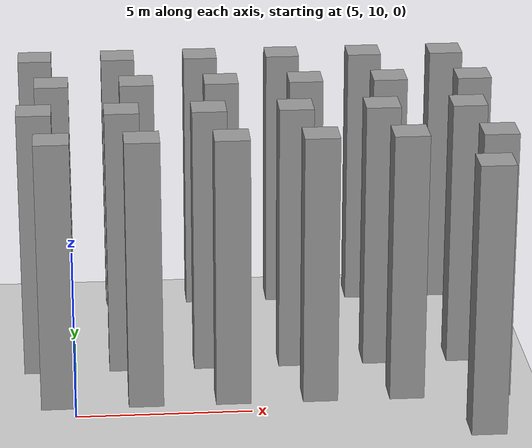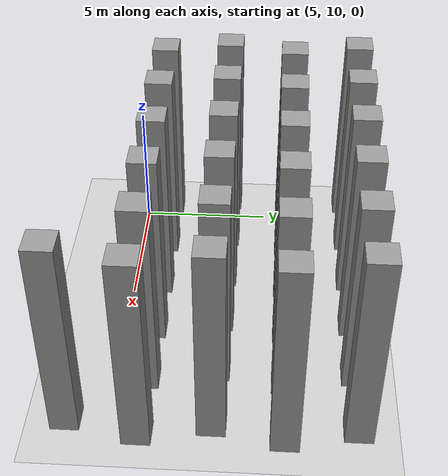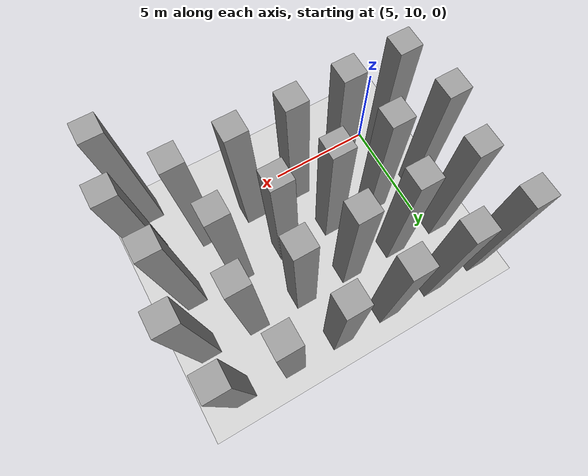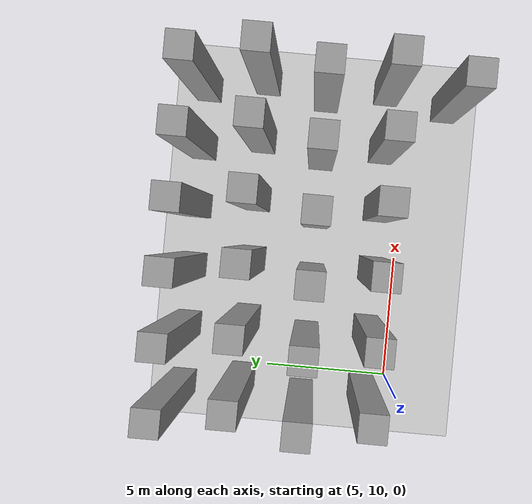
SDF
<sdf version="1.7">
 <world name="default">
  <model name="ground_plane">
   <static>1</static>
   <link name="link">
    <collision name="collision">
     <geometry><plane><normal>0 0 1</normal><size>100 100</size></plane></geometry>
     <surface>
      <contact><collide_bitmask>65535</collide_bitmask></contact>
      <friction><ode><mu>100</mu><mu2>50</mu2></ode></friction>
     </surface>
    </collision>
    <visual name="visual">
     <cast_shadows>0</cast_shadows>
     <geometry><plane><normal>0 0 1</normal><size>100 100</size></plane></geometry>
     <material>
      <script><uri>file://media/materials/scripts/gazebo.material</uri><name>Gazebo/Grey</name></script>
     </material>
    </visual>
   </link>
  </model>
  <model name="unit_box_static174">
   <link name="link">
    <inertial>
     <mass>1</mass>
     <inertia>
      <ixx>0.166667</ixx>
      <ixy>0</ixy>
      <ixz>0</ixz>
      <iyy>0.166667</iyy>
      <iyz>0</iyz>
      <izz>0.166667</izz>
     </inertia>
    </inertial>
    <visual name="visual">
     <geometry><box><size>1 1 8</size></box></geometry>
     <material>
      <script><name>Gazebo/Grey</name><uri>file://media/materials/scripts/gazebo.material</uri></script>
      <shader type="pixel"/>
     </material>
    </visual>
    <collision name="collision">
     <geometry><box><size>1 1 8</size></box></geometry>
     <surface>
      <friction>
       <ode><mu>1</mu><mu2>1</mu2><fdir1>0 0 0</fdir1><slip1>0</slip1><slip2>0</slip2></ode>
       <torsional>
        <coefficient>1</coefficient>
        <patch_radius>0</patch_radius>
        <surface_radius>0</surface_radius>
        <use_patch_radius>1</use_patch_radius>
        <ode><slip>0</slip></ode>
       </torsional>
      </friction>
      <bounce><restitution_coefficient>0</restitution_coefficient><threshold>1e+06</threshold></bounce>
      <contact>
       <collide_without_contact>0</collide_without_contact>
       <collide_without_contact_bitmask>1</collide_without_contact_bitmask>
       <collide_bitmask>1</collide_bitmask>
       <ode>
        <soft_cfm>0</soft_cfm>
        <soft_erp>0.2</soft_erp>
        <kp>1e+13</kp>
        <kd>1</kd>
        <max_vel>0.01</max_vel>
        <min_depth>0</min_depth>
       </ode>
       <bullet>
        <split_impulse>1</split_impulse>
        <split_impulse_penetration_threshold>-0.01</split_impulse_penetration_threshold>
        <soft_cfm>0</soft_cfm>
        <soft_erp>0.2</soft_erp>
        <kp>1e+13</kp>
        <kd>1</kd>
       </bullet>
      </contact>
     </surface>
    </collision>
   </link>
   <static>1</static>
   <pose>16.5 8.5 4 0 -0 0</pose>
  </model>
  <model name="unit_box_static184">
   <link name="link">
    <inertial>
     <mass>1</mass>
     <inertia>
      <ixx>0.166667</ixx>
      <ixy>0</ixy>
      <ixz>0</ixz>
      <iyy>0.166667</iyy>
      <iyz>0</iyz>
      <izz>0.166667</izz>
     </inertia>
    </inertial>
    <visual name="visual">
     <geometry><box><size>1 1 8</size></box></geometry>
     <material>
      <script><name>Gazebo/Grey</name><uri>file://media/materials/scripts/gazebo.material</uri></script>
      <shader type="pixel"/>
     </material>
    </visual>
    <collision name="collision">
     <geometry><box><size>1 1 8</size></box></geometry>
     <surface>
      <friction>
       <ode><mu>1</mu><mu2>1</mu2><fdir1>0 0 0</fdir1><slip1>0</slip1><slip2>0</slip2></ode>
       <torsional>
        <coefficient>1</coefficient>
        <patch_radius>0</patch_radius>
        <surface_radius>0</surface_radius>
        <use_patch_radius>1</use_patch_radius>
        <ode><slip>0</slip></ode>
       </torsional>
      </friction>
      <bounce><restitution_coefficient>0</restitution_coefficient><threshold>1e+06</threshold></bounce>
      <contact>
       <collide_without_contact>0</collide_without_contact>
       <collide_without_contact_bitmask>1</collide_without_contact_bitmask>
       <collide_bitmask>1</collide_bitmask>
       <ode>
        <soft_cfm>0</soft_cfm>
        <soft_erp>0.2</soft_erp>
        <kp>1e+13</kp>
        <kd>1</kd>
        <max_vel>0.01</max_vel>
        <min_depth>0</min_depth>
       </ode>
       <bullet>
        <split_impulse>1</split_impulse>
        <split_impulse_penetration_threshold>-0.01</split_impulse_penetration_threshold>
        <soft_cfm>0</soft_cfm>
        <soft_erp>0.2</soft_erp>
        <kp>1e+13</kp>
        <kd>1</kd>
       </bullet>
      </contact>
     </surface>
    </collision>
   </link>
   <static>1</static>
   <pose>4.5 11 4 0 -0 0</pose>
  </model>
  <model name="unit_box_static185">
   <link name="link">
    <inertial>
     <mass>1</mass>
     <inertia>
      <ixx>0.166667</ixx>
      <ixy>0</ixy>
      <ixz>0</ixz>
      <iyy>0.166667</iyy>
      <iyz>0</iyz>
      <izz>0.166667</izz>
     </inertia>
    </inertial>
    <visual name="visual">
     <geometry><box><size>1 1 8</size></box></geometry>
     <material>
      <script><name>Gazebo/Grey</name><uri>file://media/materials/scripts/gazebo.material</uri></script>
      <shader type="pixel"/>
     </material>
    </visual>
    <collision name="collision">
     <geometry><box><size>1 1 8</size></box></geometry>
     <surface>
      <friction>
       <ode><mu>1</mu><mu2>1</mu2><fdir1>0 0 0</fdir1><slip1>0</slip1><slip2>0</slip2></ode>
       <torsional>
        <coefficient>1</coefficient>
        <patch_radius>0</patch_radius>
        <surface_radius>0</surface_radius>
        <use_patch_radius>1</use_patch_radius>
        <ode><slip>0</slip></ode>
       </torsional>
      </friction>
      <bounce><restitution_coefficient>0</restitution_coefficient><threshold>1e+06</threshold></bounce>
      <contact>
       <collide_without_contact>0</collide_without_contact>
       <collide_without_contact_bitmask>1</collide_without_contact_bitmask>
       <collide_bitmask>1</collide_bitmask>
       <ode>
        <soft_cfm>0</soft_cfm>
        <soft_erp>0.2</soft_erp>
        <kp>1e+13</kp>
        <kd>1</kd>
        <max_vel>0.01</max_vel>
        <min_depth>0</min_depth>
       </ode>
       <bullet>
        <split_impulse>1</split_impulse>
        <split_impulse_penetration_threshold>-0.01</split_impulse_penetration_threshold>
        <soft_cfm>0</soft_cfm>
        <soft_erp>0.2</soft_erp>
        <kp>1e+13</kp>
        <kd>1</kd>
       </bullet>
      </contact>
     </surface>
    </collision>
   </link>
   <static>1</static>
   <pose>7 11 4 0 -0 0</pose>
  </model>
  <model name="unit_box_static186">
   <link name="link">
    <inertial>
     <mass>1</mass>
     <inertia>
      <ixx>0.166667</ixx>
      <ixy>0</ixy>
      <ixz>0</ixz>
      <iyy>0.166667</iyy>
      <iyz>0</iyz>
      <izz>0.166667</izz>
     </inertia>
    </inertial>
    <visual name="visual">
     <geometry><box><size>1 1 8</size></box></geometry>
     <material>
      <script><name>Gazebo/Grey</name><uri>file://media/materials/scripts/gazebo.material</uri></script>
      <shader type="pixel"/>
     </material>
    </visual>
    <collision name="collision">
     <geometry><box><size>1 1 8</size></box></geometry>
     <surface>
      <friction>
       <ode><mu>1</mu><mu2>1</mu2><fdir1>0 0 0</fdir1><slip1>0</slip1><slip2>0</slip2></ode>
       <torsional>
        <coefficient>1</coefficient>
        <patch_radius>0</patch_radius>
        <surface_radius>0</surface_radius>
        <use_patch_radius>1</use_patch_radius>
        <ode><slip>0</slip></ode>
       </torsional>
      </friction>
      <bounce><restitution_coefficient>0</restitution_coefficient><threshold>1e+06</threshold></bounce>
      <contact>
       <collide_without_contact>0</collide_without_contact>
       <collide_without_contact_bitmask>1</collide_without_contact_bitmask>
       <collide_bitmask>1</collide_bitmask>
       <ode>
        <soft_cfm>0</soft_cfm>
        <soft_erp>0.2</soft_erp>
        <kp>1e+13</kp>
        <kd>1</kd>
        <max_vel>0.01</max_vel>
        <min_depth>0</min_depth>
       </ode>
       <bullet>
        <split_impulse>1</split_impulse>
        <split_impulse_penetration_threshold>-0.01</split_impulse_penetration_threshold>
        <soft_cfm>0</soft_cfm>
        <soft_erp>0.2</soft_erp>
        <kp>1e+13</kp>
        <kd>1</kd>
       </bullet>
      </contact>
     </surface>
    </collision>
   </link>
   <static>1</static>
   <pose>9.5 11 4 0 -0 0</pose>
  </model>
  <model name="unit_box_static187">
   <link name="link">
    <inertial>
     <mass>1</mass>
     <inertia>
      <ixx>0.166667</ixx>
      <ixy>0</ixy>
      <ixz>0</ixz>
      <iyy>0.166667</iyy>
      <iyz>0</iyz>
      <izz>0.166667</izz>
     </inertia>
    </inertial>
    <visual name="visual">
     <geometry><box><size>1 1 8</size></box></geometry>
     <material>
      <script><name>Gazebo/Grey</name><uri>file://media/materials/scripts/gazebo.material</uri></script>
      <shader type="pixel"/>
     </material>
    </visual>
    <collision name="collision">
     <geometry><box><size>1 1 8</size></box></geometry>
     <surface>
      <friction>
       <ode><mu>1</mu><mu2>1</mu2><fdir1>0 0 0</fdir1><slip1>0</slip1><slip2>0</slip2></ode>
       <torsional>
        <coefficient>1</coefficient>
        <patch_radius>0</patch_radius>
        <surface_radius>0</surface_radius>
        <use_patch_radius>1</use_patch_radius>
        <ode><slip>0</slip></ode>
       </torsional>
      </friction>
      <bounce><restitution_coefficient>0</restitution_coefficient><threshold>1e+06</threshold></bounce>
      <contact>
       <collide_without_contact>0</collide_without_contact>
       <collide_without_contact_bitmask>1</collide_without_contact_bitmask>
       <collide_bitmask>1</collide_bitmask>
       <ode>
        <soft_cfm>0</soft_cfm>
        <soft_erp>0.2</soft_erp>
        <kp>1e+13</kp>
        <kd>1</kd>
        <max_vel>0.01</max_vel>
        <min_depth>0</min_depth>
       </ode>
       <bullet>
        <split_impulse>1</split_impulse>
        <split_impulse_penetration_threshold>-0.01</split_impulse_penetration_threshold>
        <soft_cfm>0</soft_cfm>
        <soft_erp>0.2</soft_erp>
        <kp>1e+13</kp>
        <kd>1</kd>
       </bullet>
      </contact>
     </surface>
    </collision>
   </link>
   <static>1</static>
   <pose>12 11 4 0 -0 0</pose>
  </model>
  <model name="unit_box_static188">
   <link name="link">
    <inertial>
     <mass>1</mass>
     <inertia>
      <ixx>0.166667</ixx>
      <ixy>0</ixy>
      <ixz>0</ixz>
      <iyy>0.166667</iyy>
      <iyz>0</iyz>
      <izz>0.166667</izz>
     </inertia>
    </inertial>
    <visual name="visual">
     <geometry><box><size>1 1 8</size></box></geometry>
     <material>
      <script><name>Gazebo/Grey</name><uri>file://media/materials/scripts/gazebo.material</uri></script>
      <shader type="pixel"/>
     </material>
    </visual>
    <collision name="collision">
     <geometry><box><size>1 1 8</size></box></geometry>
     <surface>
      <friction>
       <ode><mu>1</mu><mu2>1</mu2><fdir1>0 0 0</fdir1><slip1>0</slip1><slip2>0</slip2></ode>
       <torsional>
        <coefficient>1</coefficient>
        <patch_radius>0</patch_radius>
        <surface_radius>0</surface_radius>
        <use_patch_radius>1</use_patch_radius>
        <ode><slip>0</slip></ode>
       </torsional>
      </friction>
      <bounce><restitution_coefficient>0</restitution_coefficient><threshold>1e+06</threshold></bounce>
      <contact>
       <collide_without_contact>0</collide_without_contact>
       <collide_without_contact_bitmask>1</collide_without_contact_bitmask>
       <collide_bitmask>1</collide_bitmask>
       <ode>
        <soft_cfm>0</soft_cfm>
        <soft_erp>0.2</soft_erp>
        <kp>1e+13</kp>
        <kd>1</kd>
        <max_vel>0.01</max_vel>
        <min_depth>0</min_depth>
       </ode>
       <bullet>
        <split_impulse>1</split_impulse>
        <split_impulse_penetration_threshold>-0.01</split_impulse_penetration_threshold>
        <soft_cfm>0</soft_cfm>
        <soft_erp>0.2</soft_erp>
        <kp>1e+13</kp>
        <kd>1</kd>
       </bullet>
      </contact>
     </surface>
    </collision>
   </link>
   <static>1</static>
   <pose>14.5 11 4 0 -0 0</pose>
  </model>
  <model name="unit_box_static189">
   <link name="link">
    <inertial>
     <mass>1</mass>
     <inertia>
      <ixx>0.166667</ixx>
      <ixy>0</ixy>
      <ixz>0</ixz>
      <iyy>0.166667</iyy>
      <iyz>0</iyz>
      <izz>0.166667</izz>
     </inertia>
    </inertial>
    <visual name="visual">
     <geometry><box><size>1 1 8</size></box></geometry>
     <material>
      <script><name>Gazebo/Grey</name><uri>file://media/materials/scripts/gazebo.material</uri></script>
      <shader type="pixel"/>
     </material>
    </visual>
    <collision name="collision">
     <geometry><box><size>1 1 8</size></box></geometry>
     <surface>
      <friction>
       <ode><mu>1</mu><mu2>1</mu2><fdir1>0 0 0</fdir1><slip1>0</slip1><slip2>0</slip2></ode>
       <torsional>
        <coefficient>1</coefficient>
        <patch_radius>0</patch_radius>
        <surface_radius>0</surface_radius>
        <use_patch_radius>1</use_patch_radius>
        <ode><slip>0</slip></ode>
       </torsional>
      </friction>
      <bounce><restitution_coefficient>0</restitution_coefficient><threshold>1e+06</threshold></bounce>
      <contact>
       <collide_without_contact>0</collide_without_contact>
       <collide_without_contact_bitmask>1</collide_without_contact_bitmask>
       <collide_bitmask>1</collide_bitmask>
       <ode>
        <soft_cfm>0</soft_cfm>
        <soft_erp>0.2</soft_erp>
        <kp>1e+13</kp>
        <kd>1</kd>
        <max_vel>0.01</max_vel>
        <min_depth>0</min_depth>
       </ode>
       <bullet>
        <split_impulse>1</split_impulse>
        <split_impulse_penetration_threshold>-0.01</split_impulse_penetration_threshold>
        <soft_cfm>0</soft_cfm>
        <soft_erp>0.2</soft_erp>
        <kp>1e+13</kp>
        <kd>1</kd>
       </bullet>
      </contact>
     </surface>
    </collision>
   </link>
   <static>1</static>
   <pose>17 11 4 0 -0 0</pose>
  </model>
  <model name="unit_box_static198">
   <link name="link">
    <inertial>
     <mass>1</mass>
     <inertia>
      <ixx>0.166667</ixx>
      <ixy>0</ixy>
      <ixz>0</ixz>
      <iyy>0.166667</iyy>
      <iyz>0</iyz>
      <izz>0.166667</izz>
     </inertia>
    </inertial>
    <visual name="visual">
     <geometry><box><size>1 1 8</size></box></geometry>
     <material>
      <script><name>Gazebo/Grey</name><uri>file://media/materials/scripts/gazebo.material</uri></script>
      <shader type="pixel"/>
     </material>
    </visual>
    <collision name="collision">
     <geometry><box><size>1 1 8</size></box></geometry>
     <surface>
      <friction>
       <ode><mu>1</mu><mu2>1</mu2><fdir1>0 0 0</fdir1><slip1>0</slip1><slip2>0</slip2></ode>
       <torsional>
        <coefficient>1</coefficient>
        <patch_radius>0</patch_radius>
        <surface_radius>0</surface_radius>
        <use_patch_radius>1</use_patch_radius>
        <ode><slip>0</slip></ode>
       </torsional>
      </friction>
      <bounce><restitution_coefficient>0</restitution_coefficient><threshold>1e+06</threshold></bounce>
      <contact>
       <collide_without_contact>0</collide_without_contact>
       <collide_without_contact_bitmask>1</collide_without_contact_bitmask>
       <collide_bitmask>1</collide_bitmask>
       <ode>
        <soft_cfm>0</soft_cfm>
        <soft_erp>0.2</soft_erp>
        <kp>1e+13</kp>
        <kd>1</kd>
        <max_vel>0.01</max_vel>
        <min_depth>0</min_depth>
       </ode>
       <bullet>
        <split_impulse>1</split_impulse>
        <split_impulse_penetration_threshold>-0.01</split_impulse_penetration_threshold>
        <soft_cfm>0</soft_cfm>
        <soft_erp>0.2</soft_erp>
        <kp>1e+13</kp>
        <kd>1</kd>
       </bullet>
      </contact>
     </surface>
    </collision>
   </link>
   <static>1</static>
   <pose>4 13.5 4 0 -0 0</pose>
  </model>
  <model name="unit_box_static199">
   <link name="link">
    <inertial>
     <mass>1</mass>
     <inertia>
      <ixx>0.166667</ixx>
      <ixy>0</ixy>
      <ixz>0</ixz>
      <iyy>0.166667</iyy>
      <iyz>0</iyz>
      <izz>0.166667</izz>
     </inertia>
    </inertial>
    <visual name="visual">
     <geometry><box><size>1 1 8</size></box></geometry>
     <material>
      <script><name>Gazebo/Grey</name><uri>file://media/materials/scripts/gazebo.material</uri></script>
      <shader type="pixel"/>
     </material>
    </visual>
    <collision name="collision">
     <geometry><box><size>1 1 8</size></box></geometry>
     <surface>
      <friction>
       <ode><mu>1</mu><mu2>1</mu2><fdir1>0 0 0</fdir1><slip1>0</slip1><slip2>0</slip2></ode>
       <torsional>
        <coefficient>1</coefficient>
        <patch_radius>0</patch_radius>
        <surface_radius>0</surface_radius>
        <use_patch_radius>1</use_patch_radius>
        <ode><slip>0</slip></ode>
       </torsional>
      </friction>
      <bounce><restitution_coefficient>0</restitution_coefficient><threshold>1e+06</threshold></bounce>
      <contact>
       <collide_without_contact>0</collide_without_contact>
       <collide_without_contact_bitmask>1</collide_without_contact_bitmask>
       <collide_bitmask>1</collide_bitmask>
       <ode>
        <soft_cfm>0</soft_cfm>
        <soft_erp>0.2</soft_erp>
        <kp>1e+13</kp>
        <kd>1</kd>
        <max_vel>0.01</max_vel>
        <min_depth>0</min_depth>
       </ode>
       <bullet>
        <split_impulse>1</split_impulse>
        <split_impulse_penetration_threshold>-0.01</split_impulse_penetration_threshold>
        <soft_cfm>0</soft_cfm>
        <soft_erp>0.2</soft_erp>
        <kp>1e+13</kp>
        <kd>1</kd>
       </bullet>
      </contact>
     </surface>
    </collision>
   </link>
   <static>1</static>
   <pose>6.5 13.5 4 0 -0 0</pose>
  </model>
  <model name="unit_box_static200">
   <link name="link">
    <inertial>
     <mass>1</mass>
     <inertia>
      <ixx>0.166667</ixx>
      <ixy>0</ixy>
      <ixz>0</ixz>
      <iyy>0.166667</iyy>
      <iyz>0</iyz>
      <izz>0.166667</izz>
     </inertia>
    </inertial>
    <visual name="visual">
     <geometry><box><size>1 1 8</size></box></geometry>
     <material>
      <script><name>Gazebo/Grey</name><uri>file://media/materials/scripts/gazebo.material</uri></script>
      <shader type="pixel"/>
     </material>
    </visual>
    <collision name="collision">
     <geometry><box><size>1 1 8</size></box></geometry>
     <surface>
      <friction>
       <ode><mu>1</mu><mu2>1</mu2><fdir1>0 0 0</fdir1><slip1>0</slip1><slip2>0</slip2></ode>
       <torsional>
        <coefficient>1</coefficient>
        <patch_radius>0</patch_radius>
        <surface_radius>0</surface_radius>
        <use_patch_radius>1</use_patch_radius>
        <ode><slip>0</slip></ode>
       </torsional>
      </friction>
      <bounce><restitution_coefficient>0</restitution_coefficient><threshold>1e+06</threshold></bounce>
      <contact>
       <collide_without_contact>0</collide_without_contact>
       <collide_without_contact_bitmask>1</collide_without_contact_bitmask>
       <collide_bitmask>1</collide_bitmask>
       <ode>
        <soft_cfm>0</soft_cfm>
        <soft_erp>0.2</soft_erp>
        <kp>1e+13</kp>
        <kd>1</kd>
        <max_vel>0.01</max_vel>
        <min_depth>0</min_depth>
       </ode>
       <bullet>
        <split_impulse>1</split_impulse>
        <split_impulse_penetration_threshold>-0.01</split_impulse_penetration_threshold>
        <soft_cfm>0</soft_cfm>
        <soft_erp>0.2</soft_erp>
        <kp>1e+13</kp>
        <kd>1</kd>
       </bullet>
      </contact>
     </surface>
    </collision>
   </link>
   <static>1</static>
   <pose>9 13.5 4 0 -0 0</pose>
  </model>
  <model name="unit_box_static201">
   <link name="link">
    <inertial>
     <mass>1</mass>
     <inertia>
      <ixx>0.166667</ixx>
      <ixy>0</ixy>
      <ixz>0</ixz>
      <iyy>0.166667</iyy>
      <iyz>0</iyz>
      <izz>0.166667</izz>
     </inertia>
    </inertial>
    <visual name="visual">
     <geometry><box><size>1 1 8</size></box></geometry>
     <material>
      <script><name>Gazebo/Grey</name><uri>file://media/materials/scripts/gazebo.material</uri></script>
      <shader type="pixel"/>
     </material>
    </visual>
    <collision name="collision">
     <geometry><box><size>1 1 8</size></box></geometry>
     <surface>
      <friction>
       <ode><mu>1</mu><mu2>1</mu2><fdir1>0 0 0</fdir1><slip1>0</slip1><slip2>0</slip2></ode>
       <torsional>
        <coefficient>1</coefficient>
        <patch_radius>0</patch_radius>
        <surface_radius>0</surface_radius>
        <use_patch_radius>1</use_patch_radius>
        <ode><slip>0</slip></ode>
       </torsional>
      </friction>
      <bounce><restitution_coefficient>0</restitution_coefficient><threshold>1e+06</threshold></bounce>
      <contact>
       <collide_without_contact>0</collide_without_contact>
       <collide_without_contact_bitmask>1</collide_without_contact_bitmask>
       <collide_bitmask>1</collide_bitmask>
       <ode>
        <soft_cfm>0</soft_cfm>
        <soft_erp>0.2</soft_erp>
        <kp>1e+13</kp>
        <kd>1</kd>
        <max_vel>0.01</max_vel>
        <min_depth>0</min_depth>
       </ode>
       <bullet>
        <split_impulse>1</split_impulse>
        <split_impulse_penetration_threshold>-0.01</split_impulse_penetration_threshold>
        <soft_cfm>0</soft_cfm>
        <soft_erp>0.2</soft_erp>
        <kp>1e+13</kp>
        <kd>1</kd>
       </bullet>
      </contact>
     </surface>
    </collision>
   </link>
   <static>1</static>
   <pose>11.5 13.5 4 0 -0 0</pose>
  </model>
  <model name="unit_box_static202">
   <link name="link">
    <inertial>
     <mass>1</mass>
     <inertia>
      <ixx>0.166667</ixx>
      <ixy>0</ixy>
      <ixz>0</ixz>
      <iyy>0.166667</iyy>
      <iyz>0</iyz>
      <izz>0.166667</izz>
     </inertia>
    </inertial>
    <visual name="visual">
     <geometry><box><size>1 1 8</size></box></geometry>
     <material>
      <script><name>Gazebo/Grey</name><uri>file://media/materials/scripts/gazebo.material</uri></script>
      <shader type="pixel"/>
     </material>
    </visual>
    <collision name="collision">
     <geometry><box><size>1 1 8</size></box></geometry>
     <surface>
      <friction>
       <ode><mu>1</mu><mu2>1</mu2><fdir1>0 0 0</fdir1><slip1>0</slip1><slip2>0</slip2></ode>
       <torsional>
        <coefficient>1</coefficient>
        <patch_radius>0</patch_radius>
        <surface_radius>0</surface_radius>
        <use_patch_radius>1</use_patch_radius>
        <ode><slip>0</slip></ode>
       </torsional>
      </friction>
      <bounce><restitution_coefficient>0</restitution_coefficient><threshold>1e+06</threshold></bounce>
      <contact>
       <collide_without_contact>0</collide_without_contact>
       <collide_without_contact_bitmask>1</collide_without_contact_bitmask>
       <collide_bitmask>1</collide_bitmask>
       <ode>
        <soft_cfm>0</soft_cfm>
        <soft_erp>0.2</soft_erp>
        <kp>1e+13</kp>
        <kd>1</kd>
        <max_vel>0.01</max_vel>
        <min_depth>0</min_depth>
       </ode>
       <bullet>
        <split_impulse>1</split_impulse>
        <split_impulse_penetration_threshold>-0.01</split_impulse_penetration_threshold>
        <soft_cfm>0</soft_cfm>
        <soft_erp>0.2</soft_erp>
        <kp>1e+13</kp>
        <kd>1</kd>
       </bullet>
      </contact>
     </surface>
    </collision>
   </link>
   <static>1</static>
   <pose>14 13.5 4 0 -0 0</pose>
  </model>
  <model name="unit_box_static203">
   <link name="link">
    <inertial>
     <mass>1</mass>
     <inertia>
      <ixx>0.166667</ixx>
      <ixy>0</ixy>
      <ixz>0</ixz>
      <iyy>0.166667</iyy>
      <iyz>0</iyz>
      <izz>0.166667</izz>
     </inertia>
    </inertial>
    <visual name="visual">
     <geometry><box><size>1 1 8</size></box></geometry>
     <material>
      <script><name>Gazebo/Grey</name><uri>file://media/materials/scripts/gazebo.material</uri></script>
      <shader type="pixel"/>
     </material>
    </visual>
    <collision name="collision">
     <geometry><box><size>1 1 8</size></box></geometry>
     <surface>
      <friction>
       <ode><mu>1</mu><mu2>1</mu2><fdir1>0 0 0</fdir1><slip1>0</slip1><slip2>0</slip2></ode>
       <torsional>
        <coefficient>1</coefficient>
        <patch_radius>0</patch_radius>
        <surface_radius>0</surface_radius>
        <use_patch_radius>1</use_patch_radius>
        <ode><slip>0</slip></ode>
       </torsional>
      </friction>
      <bounce><restitution_coefficient>0</restitution_coefficient><threshold>1e+06</threshold></bounce>
      <contact>
       <collide_without_contact>0</collide_without_contact>
       <collide_without_contact_bitmask>1</collide_without_contact_bitmask>
       <collide_bitmask>1</collide_bitmask>
       <ode>
        <soft_cfm>0</soft_cfm>
        <soft_erp>0.2</soft_erp>
        <kp>1e+13</kp>
        <kd>1</kd>
        <max_vel>0.01</max_vel>
        <min_depth>0</min_depth>
       </ode>
       <bullet>
        <split_impulse>1</split_impulse>
        <split_impulse_penetration_threshold>-0.01</split_impulse_penetration_threshold>
        <soft_cfm>0</soft_cfm>
        <soft_erp>0.2</soft_erp>
        <kp>1e+13</kp>
        <kd>1</kd>
       </bullet>
      </contact>
     </surface>
    </collision>
   </link>
   <static>1</static>
   <pose>16.5 13.5 4 0 -0 0</pose>
  </model>
  <model name="unit_box_static213">
   <link name="link">
    <inertial>
     <mass>1</mass>
     <inertia>
      <ixx>0.166667</ixx>
      <ixy>0</ixy>
      <ixz>0</ixz>
      <iyy>0.166667</iyy>
      <iyz>0</iyz>
      <izz>0.166667</izz>
     </inertia>
    </inertial>
    <visual name="visual">
     <geometry><box><size>1 1 8</size></box></geometry>
     <material>
      <script><name>Gazebo/Grey</name><uri>file://media/materials/scripts/gazebo.material</uri></script>
      <shader type="pixel"/>
     </material>
    </visual>
    <collision name="collision">
     <geometry><box><size>1 1 8</size></box></geometry>
     <surface>
      <friction>
       <ode><mu>1</mu><mu2>1</mu2><fdir1>0 0 0</fdir1><slip1>0</slip1><slip2>0</slip2></ode>
       <torsional>
        <coefficient>1</coefficient>
        <patch_radius>0</patch_radius>
        <surface_radius>0</surface_radius>
        <use_patch_radius>1</use_patch_radius>
        <ode><slip>0</slip></ode>
       </torsional>
      </friction>
      <bounce><restitution_coefficient>0</restitution_coefficient><threshold>1e+06</threshold></bounce>
      <contact>
       <collide_without_contact>0</collide_without_contact>
       <collide_without_contact_bitmask>1</collide_without_contact_bitmask>
       <collide_bitmask>1</collide_bitmask>
       <ode>
        <soft_cfm>0</soft_cfm>
        <soft_erp>0.2</soft_erp>
        <kp>1e+13</kp>
        <kd>1</kd>
        <max_vel>0.01</max_vel>
        <min_depth>0</min_depth>
       </ode>
       <bullet>
        <split_impulse>1</split_impulse>
        <split_impulse_penetration_threshold>-0.01</split_impulse_penetration_threshold>
        <soft_cfm>0</soft_cfm>
        <soft_erp>0.2</soft_erp>
        <kp>1e+13</kp>
        <kd>1</kd>
       </bullet>
      </contact>
     </surface>
    </collision>
   </link>
   <static>1</static>
   <pose>4.5 16 4 0 -0 0</pose>
  </model>
  <model name="unit_box_static214">
   <link name="link">
    <inertial>
     <mass>1</mass>
     <inertia>
      <ixx>0.166667</ixx>
      <ixy>0</ixy>
      <ixz>0</ixz>
      <iyy>0.166667</iyy>
      <iyz>0</iyz>
      <izz>0.166667</izz>
     </inertia>
    </inertial>
    <visual name="visual">
     <geometry><box><size>1 1 8</size></box></geometry>
     <material>
      <script><name>Gazebo/Grey</name><uri>file://media/materials/scripts/gazebo.material</uri></script>
      <shader type="pixel"/>
     </material>
    </visual>
    <collision name="collision">
     <geometry><box><size>1 1 8</size></box></geometry>
     <surface>
      <friction>
       <ode><mu>1</mu><mu2>1</mu2><fdir1>0 0 0</fdir1><slip1>0</slip1><slip2>0</slip2></ode>
       <torsional>
        <coefficient>1</coefficient>
        <patch_radius>0</patch_radius>
        <surface_radius>0</surface_radius>
        <use_patch_radius>1</use_patch_radius>
        <ode><slip>0</slip></ode>
       </torsional>
      </friction>
      <bounce><restitution_coefficient>0</restitution_coefficient><threshold>1e+06</threshold></bounce>
      <contact>
       <collide_without_contact>0</collide_without_contact>
       <collide_without_contact_bitmask>1</collide_without_contact_bitmask>
       <collide_bitmask>1</collide_bitmask>
       <ode>
        <soft_cfm>0</soft_cfm>
        <soft_erp>0.2</soft_erp>
        <kp>1e+13</kp>
        <kd>1</kd>
        <max_vel>0.01</max_vel>
        <min_depth>0</min_depth>
       </ode>
       <bullet>
        <split_impulse>1</split_impulse>
        <split_impulse_penetration_threshold>-0.01</split_impulse_penetration_threshold>
        <soft_cfm>0</soft_cfm>
        <soft_erp>0.2</soft_erp>
        <kp>1e+13</kp>
        <kd>1</kd>
       </bullet>
      </contact>
     </surface>
    </collision>
   </link>
   <static>1</static>
   <pose>7 16 4 0 -0 0</pose>
  </model>
  <model name="unit_box_static215">
   <link name="link">
    <inertial>
     <mass>1</mass>
     <inertia>
      <ixx>0.166667</ixx>
      <ixy>0</ixy>
      <ixz>0</ixz>
      <iyy>0.166667</iyy>
      <iyz>0</iyz>
      <izz>0.166667</izz>
     </inertia>
    </inertial>
    <visual name="visual">
     <geometry><box><size>1 1 8</size></box></geometry>
     <material>
      <script><name>Gazebo/Grey</name><uri>file://media/materials/scripts/gazebo.material</uri></script>
      <shader type="pixel"/>
     </material>
    </visual>
    <collision name="collision">
     <geometry><box><size>1 1 8</size></box></geometry>
     <surface>
      <friction>
       <ode><mu>1</mu><mu2>1</mu2><fdir1>0 0 0</fdir1><slip1>0</slip1><slip2>0</slip2></ode>
       <torsional>
        <coefficient>1</coefficient>
        <patch_radius>0</patch_radius>
        <surface_radius>0</surface_radius>
        <use_patch_radius>1</use_patch_radius>
        <ode><slip>0</slip></ode>
       </torsional>
      </friction>
      <bounce><restitution_coefficient>0</restitution_coefficient><threshold>1e+06</threshold></bounce>
      <contact>
       <collide_without_contact>0</collide_without_contact>
       <collide_without_contact_bitmask>1</collide_without_contact_bitmask>
       <collide_bitmask>1</collide_bitmask>
       <ode>
        <soft_cfm>0</soft_cfm>
        <soft_erp>0.2</soft_erp>
        <kp>1e+13</kp>
        <kd>1</kd>
        <max_vel>0.01</max_vel>
        <min_depth>0</min_depth>
       </ode>
       <bullet>
        <split_impulse>1</split_impulse>
        <split_impulse_penetration_threshold>-0.01</split_impulse_penetration_threshold>
        <soft_cfm>0</soft_cfm>
        <soft_erp>0.2</soft_erp>
        <kp>1e+13</kp>
        <kd>1</kd>
       </bullet>
      </contact>
     </surface>
    </collision>
   </link>
   <static>1</static>
   <pose>9.5 16 4 0 -0 0</pose>
  </model>
  <model name="unit_box_static216">
   <link name="link">
    <inertial>
     <mass>1</mass>
     <inertia>
      <ixx>0.166667</ixx>
      <ixy>0</ixy>
      <ixz>0</ixz>
      <iyy>0.166667</iyy>
      <iyz>0</iyz>
      <izz>0.166667</izz>
     </inertia>
    </inertial>
    <visual name="visual">
     <geometry><box><size>1 1 8</size></box></geometry>
     <material>
      <script><name>Gazebo/Grey</name><uri>file://media/materials/scripts/gazebo.material</uri></script>
      <shader type="pixel"/>
     </material>
    </visual>
    <collision name="collision">
     <geometry><box><size>1 1 8</size></box></geometry>
     <surface>
      <friction>
       <ode><mu>1</mu><mu2>1</mu2><fdir1>0 0 0</fdir1><slip1>0</slip1><slip2>0</slip2></ode>
       <torsional>
        <coefficient>1</coefficient>
        <patch_radius>0</patch_radius>
        <surface_radius>0</surface_radius>
        <use_patch_radius>1</use_patch_radius>
        <ode><slip>0</slip></ode>
       </torsional>
      </friction>
      <bounce><restitution_coefficient>0</restitution_coefficient><threshold>1e+06</threshold></bounce>
      <contact>
       <collide_without_contact>0</collide_without_contact>
       <collide_without_contact_bitmask>1</collide_without_contact_bitmask>
       <collide_bitmask>1</collide_bitmask>
       <ode>
        <soft_cfm>0</soft_cfm>
        <soft_erp>0.2</soft_erp>
        <kp>1e+13</kp>
        <kd>1</kd>
        <max_vel>0.01</max_vel>
        <min_depth>0</min_depth>
       </ode>
       <bullet>
        <split_impulse>1</split_impulse>
        <split_impulse_penetration_threshold>-0.01</split_impulse_penetration_threshold>
        <soft_cfm>0</soft_cfm>
        <soft_erp>0.2</soft_erp>
        <kp>1e+13</kp>
        <kd>1</kd>
       </bullet>
      </contact>
     </surface>
    </collision>
   </link>
   <static>1</static>
   <pose>12 16 4 0 -0 0</pose>
  </model>
  <model name="unit_box_static217">
   <link name="link">
    <inertial>
     <mass>1</mass>
     <inertia>
      <ixx>0.166667</ixx>
      <ixy>0</ixy>
      <ixz>0</ixz>
      <iyy>0.166667</iyy>
      <iyz>0</iyz>
      <izz>0.166667</izz>
     </inertia>
    </inertial>
    <visual name="visual">
     <geometry><box><size>1 1 8</size></box></geometry>
     <material>
      <script><name>Gazebo/Grey</name><uri>file://media/materials/scripts/gazebo.material</uri></script>
      <shader type="pixel"/>
     </material>
    </visual>
    <collision name="collision">
     <geometry><box><size>1 1 8</size></box></geometry>
     <surface>
      <friction>
       <ode><mu>1</mu><mu2>1</mu2><fdir1>0 0 0</fdir1><slip1>0</slip1><slip2>0</slip2></ode>
       <torsional>
        <coefficient>1</coefficient>
        <patch_radius>0</patch_radius>
        <surface_radius>0</surface_radius>
        <use_patch_radius>1</use_patch_radius>
        <ode><slip>0</slip></ode>
       </torsional>
      </friction>
      <bounce><restitution_coefficient>0</restitution_coefficient><threshold>1e+06</threshold></bounce>
      <contact>
       <collide_without_contact>0</collide_without_contact>
       <collide_without_contact_bitmask>1</collide_without_contact_bitmask>
       <collide_bitmask>1</collide_bitmask>
       <ode>
        <soft_cfm>0</soft_cfm>
        <soft_erp>0.2</soft_erp>
        <kp>1e+13</kp>
        <kd>1</kd>
        <max_vel>0.01</max_vel>
        <min_depth>0</min_depth>
       </ode>
       <bullet>
        <split_impulse>1</split_impulse>
        <split_impulse_penetration_threshold>-0.01</split_impulse_penetration_threshold>
        <soft_cfm>0</soft_cfm>
        <soft_erp>0.2</soft_erp>
        <kp>1e+13</kp>
        <kd>1</kd>
       </bullet>
      </contact>
     </surface>
    </collision>
   </link>
   <static>1</static>
   <pose>14.5 16 4 0 -0 0</pose>
  </model>
  <model name="unit_box_static218">
   <link name="link">
    <inertial>
     <mass>1</mass>
     <inertia>
      <ixx>0.166667</ixx>
      <ixy>0</ixy>
      <ixz>0</ixz>
      <iyy>0.166667</iyy>
      <iyz>0</iyz>
      <izz>0.166667</izz>
     </inertia>
    </inertial>
    <visual name="visual">
     <geometry><box><size>1 1 8</size></box></geometry>
     <material>
      <script><name>Gazebo/Grey</name><uri>file://media/materials/scripts/gazebo.material</uri></script>
      <shader type="pixel"/>
     </material>
    </visual>
    <collision name="collision">
     <geometry><box><size>1 1 8</size></box></geometry>
     <surface>
      <friction>
       <ode><mu>1</mu><mu2>1</mu2><fdir1>0 0 0</fdir1><slip1>0</slip1><slip2>0</slip2></ode>
       <torsional>
        <coefficient>1</coefficient>
        <patch_radius>0</patch_radius>
        <surface_radius>0</surface_radius>
        <use_patch_radius>1</use_patch_radius>
        <ode><slip>0</slip></ode>
       </torsional>
      </friction>
      <bounce><restitution_coefficient>0</restitution_coefficient><threshold>1e+06</threshold></bounce>
      <contact>
       <collide_without_contact>0</collide_without_contact>
       <collide_without_contact_bitmask>1</collide_without_contact_bitmask>
       <collide_bitmask>1</collide_bitmask>
       <ode>
        <soft_cfm>0</soft_cfm>
        <soft_erp>0.2</soft_erp>
        <kp>1e+13</kp>
        <kd>1</kd>
        <max_vel>0.01</max_vel>
        <min_depth>0</min_depth>
       </ode>
       <bullet>
        <split_impulse>1</split_impulse>
        <split_impulse_penetration_threshold>-0.01</split_impulse_penetration_threshold>
        <soft_cfm>0</soft_cfm>
        <soft_erp>0.2</soft_erp>
        <kp>1e+13</kp>
        <kd>1</kd>
       </bullet>
      </contact>
     </surface>
    </collision>
   </link>
   <static>1</static>
   <pose>17 16 4 0 -0 0</pose>
  </model>
  <model name="unit_box_static227">
   <link name="link">
    <inertial>
     <mass>1</mass>
     <inertia>
      <ixx>0.166667</ixx>
      <ixy>0</ixy>
      <ixz>0</ixz>
      <iyy>0.166667</iyy>
      <iyz>0</iyz>
      <izz>0.166667</izz>
     </inertia>
    </inertial>
    <visual name="visual">
     <geometry><box><size>1 1 8</size></box></geometry>
     <material>
      <script><name>Gazebo/Grey</name><uri>file://media/materials/scripts/gazebo.material</uri></script>
      <shader type="pixel"/>
     </material>
    </visual>
    <collision name="collision">
     <geometry><box><size>1 1 8</size></box></geometry>
     <surface>
      <friction>
       <ode><mu>1</mu><mu2>1</mu2><fdir1>0 0 0</fdir1><slip1>0</slip1><slip2>0</slip2></ode>
       <torsional>
        <coefficient>1</coefficient>
        <patch_radius>0</patch_radius>
        <surface_radius>0</surface_radius>
        <use_patch_radius>1</use_patch_radius>
        <ode><slip>0</slip></ode>
       </torsional>
      </friction>
      <bounce><restitution_coefficient>0</restitution_coefficient><threshold>1e+06</threshold></bounce>
      <contact>
       <collide_without_contact>0</collide_without_contact>
       <collide_without_contact_bitmask>1</collide_without_contact_bitmask>
       <collide_bitmask>1</collide_bitmask>
       <ode>
        <soft_cfm>0</soft_cfm>
        <soft_erp>0.2</soft_erp>
        <kp>1e+13</kp>
        <kd>1</kd>
        <max_vel>0.01</max_vel>
        <min_depth>0</min_depth>
       </ode>
       <bullet>
        <split_impulse>1</split_impulse>
        <split_impulse_penetration_threshold>-0.01</split_impulse_penetration_threshold>
        <soft_cfm>0</soft_cfm>
        <soft_erp>0.2</soft_erp>
        <kp>1e+13</kp>
        <kd>1</kd>
       </bullet>
      </contact>
     </surface>
    </collision>
   </link>
   <static>1</static>
   <pose>4 18.5 4 0 -0 0</pose>
  </model>
  <model name="unit_box_static228">
   <link name="link">
    <inertial>
     <mass>1</mass>
     <inertia>
      <ixx>0.166667</ixx>
      <ixy>0</ixy>
      <ixz>0</ixz>
      <iyy>0.166667</iyy>
      <iyz>0</iyz>
      <izz>0.166667</izz>
     </inertia>
    </inertial>
    <visual name="visual">
     <geometry><box><size>1 1 8</size></box></geometry>
     <material>
      <script><name>Gazebo/Grey</name><uri>file://media/materials/scripts/gazebo.material</uri></script>
      <shader type="pixel"/>
     </material>
    </visual>
    <collision name="collision">
     <geometry><box><size>1 1 8</size></box></geometry>
     <surface>
      <friction>
       <ode><mu>1</mu><mu2>1</mu2><fdir1>0 0 0</fdir1><slip1>0</slip1><slip2>0</slip2></ode>
       <torsional>
        <coefficient>1</coefficient>
        <patch_radius>0</patch_radius>
        <surface_radius>0</surface_radius>
        <use_patch_radius>1</use_patch_radius>
        <ode><slip>0</slip></ode>
       </torsional>
      </friction>
      <bounce><restitution_coefficient>0</restitution_coefficient><threshold>1e+06</threshold></bounce>
      <contact>
       <collide_without_contact>0</collide_without_contact>
       <collide_without_contact_bitmask>1</collide_without_contact_bitmask>
       <collide_bitmask>1</collide_bitmask>
       <ode>
        <soft_cfm>0</soft_cfm>
        <soft_erp>0.2</soft_erp>
        <kp>1e+13</kp>
        <kd>1</kd>
        <max_vel>0.01</max_vel>
        <min_depth>0</min_depth>
       </ode>
       <bullet>
        <split_impulse>1</split_impulse>
        <split_impulse_penetration_threshold>-0.01</split_impulse_penetration_threshold>
        <soft_cfm>0</soft_cfm>
        <soft_erp>0.2</soft_erp>
        <kp>1e+13</kp>
        <kd>1</kd>
       </bullet>
      </contact>
     </surface>
    </collision>
   </link>
   <static>1</static>
   <pose>6.5 18.5 4 0 -0 0</pose>
  </model>
  <model name="unit_box_static229">
   <link name="link">
    <inertial>
     <mass>1</mass>
     <inertia>
      <ixx>0.166667</ixx>
      <ixy>0</ixy>
      <ixz>0</ixz>
      <iyy>0.166667</iyy>
      <iyz>0</iyz>
      <izz>0.166667</izz>
     </inertia>
    </inertial>
    <visual name="visual">
     <geometry><box><size>1 1 8</size></box></geometry>
     <material>
      <script><name>Gazebo/Grey</name><uri>file://media/materials/scripts/gazebo.material</uri></script>
      <shader type="pixel"/>
     </material>
    </visual>
    <collision name="collision">
     <geometry><box><size>1 1 8</size></box></geometry>
     <surface>
      <friction>
       <ode><mu>1</mu><mu2>1</mu2><fdir1>0 0 0</fdir1><slip1>0</slip1><slip2>0</slip2></ode>
       <torsional>
        <coefficient>1</coefficient>
        <patch_radius>0</patch_radius>
        <surface_radius>0</surface_radius>
        <use_patch_radius>1</use_patch_radius>
        <ode><slip>0</slip></ode>
       </torsional>
      </friction>
      <bounce><restitution_coefficient>0</restitution_coefficient><threshold>1e+06</threshold></bounce>
      <contact>
       <collide_without_contact>0</collide_without_contact>
       <collide_without_contact_bitmask>1</collide_without_contact_bitmask>
       <collide_bitmask>1</collide_bitmask>
       <ode>
        <soft_cfm>0</soft_cfm>
        <soft_erp>0.2</soft_erp>
        <kp>1e+13</kp>
        <kd>1</kd>
        <max_vel>0.01</max_vel>
        <min_depth>0</min_depth>
       </ode>
       <bullet>
        <split_impulse>1</split_impulse>
        <split_impulse_penetration_threshold>-0.01</split_impulse_penetration_threshold>
        <soft_cfm>0</soft_cfm>
        <soft_erp>0.2</soft_erp>
        <kp>1e+13</kp>
        <kd>1</kd>
       </bullet>
      </contact>
     </surface>
    </collision>
   </link>
   <static>1</static>
   <pose>9 18.5 4 0 -0 0</pose>
  </model>
  <model name="unit_box_static230">
   <link name="link">
    <inertial>
     <mass>1</mass>
     <inertia>
      <ixx>0.166667</ixx>
      <ixy>0</ixy>
      <ixz>0</ixz>
      <iyy>0.166667</iyy>
      <iyz>0</iyz>
      <izz>0.166667</izz>
     </inertia>
    </inertial>
    <visual name="visual">
     <geometry><box><size>1 1 8</size></box></geometry>
     <material>
      <script><name>Gazebo/Grey</name><uri>file://media/materials/scripts/gazebo.material</uri></script>
      <shader type="pixel"/>
     </material>
    </visual>
    <collision name="collision">
     <geometry><box><size>1 1 8</size></box></geometry>
     <surface>
      <friction>
       <ode><mu>1</mu><mu2>1</mu2><fdir1>0 0 0</fdir1><slip1>0</slip1><slip2>0</slip2></ode>
       <torsional>
        <coefficient>1</coefficient>
        <patch_radius>0</patch_radius>
        <surface_radius>0</surface_radius>
        <use_patch_radius>1</use_patch_radius>
        <ode><slip>0</slip></ode>
       </torsional>
      </friction>
      <bounce><restitution_coefficient>0</restitution_coefficient><threshold>1e+06</threshold></bounce>
      <contact>
       <collide_without_contact>0</collide_without_contact>
       <collide_without_contact_bitmask>1</collide_without_contact_bitmask>
       <collide_bitmask>1</collide_bitmask>
       <ode>
        <soft_cfm>0</soft_cfm>
        <soft_erp>0.2</soft_erp>
        <kp>1e+13</kp>
        <kd>1</kd>
        <max_vel>0.01</max_vel>
        <min_depth>0</min_depth>
       </ode>
       <bullet>
        <split_impulse>1</split_impulse>
        <split_impulse_penetration_threshold>-0.01</split_impulse_penetration_threshold>
        <soft_cfm>0</soft_cfm>
        <soft_erp>0.2</soft_erp>
        <kp>1e+13</kp>
        <kd>1</kd>
       </bullet>
      </contact>
     </surface>
    </collision>
   </link>
   <static>1</static>
   <pose>11.5 18.5 4 0 -0 0</pose>
  </model>
  <model name="unit_box_static231">
   <link name="link">
    <inertial>
     <mass>1</mass>
     <inertia>
      <ixx>0.166667</ixx>
      <ixy>0</ixy>
      <ixz>0</ixz>
      <iyy>0.166667</iyy>
      <iyz>0</iyz>
      <izz>0.166667</izz>
     </inertia>
    </inertial>
    <visual name="visual">
     <geometry><box><size>1 1 8</size></box></geometry>
     <material>
      <script><name>Gazebo/Grey</name><uri>file://media/materials/scripts/gazebo.material</uri></script>
      <shader type="pixel"/>
     </material>
    </visual>
    <collision name="collision">
     <geometry><box><size>1 1 8</size></box></geometry>
     <surface>
      <friction>
       <ode><mu>1</mu><mu2>1</mu2><fdir1>0 0 0</fdir1><slip1>0</slip1><slip2>0</slip2></ode>
       <torsional>
        <coefficient>1</coefficient>
        <patch_radius>0</patch_radius>
        <surface_radius>0</surface_radius>
        <use_patch_radius>1</use_patch_radius>
        <ode><slip>0</slip></ode>
       </torsional>
      </friction>
      <bounce><restitution_coefficient>0</restitution_coefficient><threshold>1e+06</threshold></bounce>
      <contact>
       <collide_without_contact>0</collide_without_contact>
       <collide_without_contact_bitmask>1</collide_without_contact_bitmask>
       <collide_bitmask>1</collide_bitmask>
       <ode>
        <soft_cfm>0</soft_cfm>
        <soft_erp>0.2</soft_erp>
        <kp>1e+13</kp>
        <kd>1</kd>
        <max_vel>0.01</max_vel>
        <min_depth>0</min_depth>
       </ode>
       <bullet>
        <split_impulse>1</split_impulse>
        <split_impulse_penetration_threshold>-0.01</split_impulse_penetration_threshold>
        <soft_cfm>0</soft_cfm>
        <soft_erp>0.2</soft_erp>
        <kp>1e+13</kp>
        <kd>1</kd>
       </bullet>
      </contact>
     </surface>
    </collision>
   </link>
   <static>1</static>
   <pose>14 18.5 4 0 -0 0</pose>
  </model>
  <model name="unit_box_static232">
   <link name="link">
    <inertial>
     <mass>1</mass>
     <inertia>
      <ixx>0.166667</ixx>
      <ixy>0</ixy>
      <ixz>0</ixz>
      <iyy>0.166667</iyy>
      <iyz>0</iyz>
      <izz>0.166667</izz>
     </inertia>
    </inertial>
    <visual name="visual">
     <geometry><box><size>1 1 8</size></box></geometry>
     <material>
      <script><name>Gazebo/Grey</name><uri>file://media/materials/scripts/gazebo.material</uri></script>
      <shader type="pixel"/>
     </material>
    </visual>
    <collision name="collision">
     <geometry><box><size>1 1 8</size></box></geometry>
     <surface>
      <friction>
       <ode><mu>1</mu><mu2>1</mu2><fdir1>0 0 0</fdir1><slip1>0</slip1><slip2>0</slip2></ode>
       <torsional>
        <coefficient>1</coefficient>
        <patch_radius>0</patch_radius>
        <surface_radius>0</surface_radius>
        <use_patch_radius>1</use_patch_radius>
        <ode><slip>0</slip></ode>
       </torsional>
      </friction>
      <bounce><restitution_coefficient>0</restitution_coefficient><threshold>1e+06</threshold></bounce>
      <contact>
       <collide_without_contact>0</collide_without_contact>
       <collide_without_contact_bitmask>1</collide_without_contact_bitmask>
       <collide_bitmask>1</collide_bitmask>
       <ode>
        <soft_cfm>0</soft_cfm>
        <soft_erp>0.2</soft_erp>
        <kp>1e+13</kp>
        <kd>1</kd>
        <max_vel>0.01</max_vel>
        <min_depth>0</min_depth>
       </ode>
       <bullet>
        <split_impulse>1</split_impulse>
        <split_impulse_penetration_threshold>-0.01</split_impulse_penetration_threshold>
        <soft_cfm>0</soft_cfm>
        <soft_erp>0.2</soft_erp>
        <kp>1e+13</kp>
        <kd>1</kd>
       </bullet>
      </contact>
     </surface>
    </collision>
   </link>
   <static>1</static>
   <pose>16.5 18.5 4 0 -0 0</pose>
  </model>
 </world>
</sdf>
